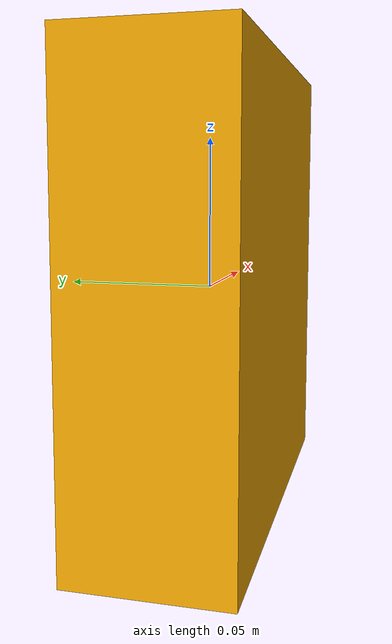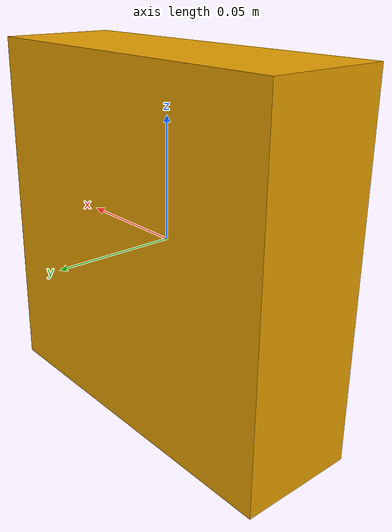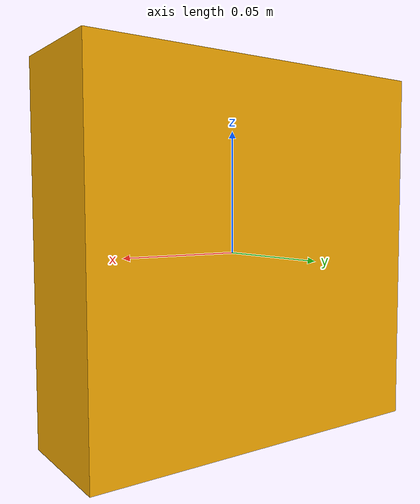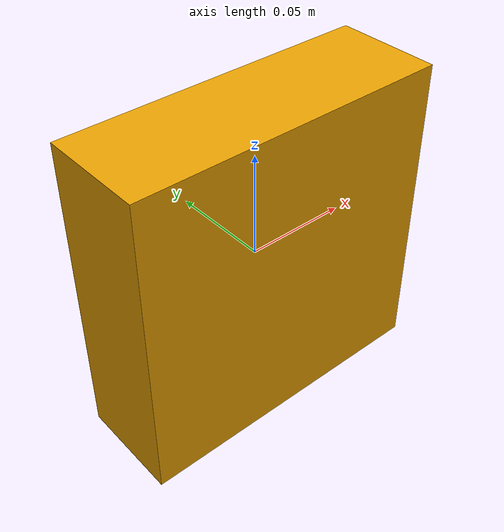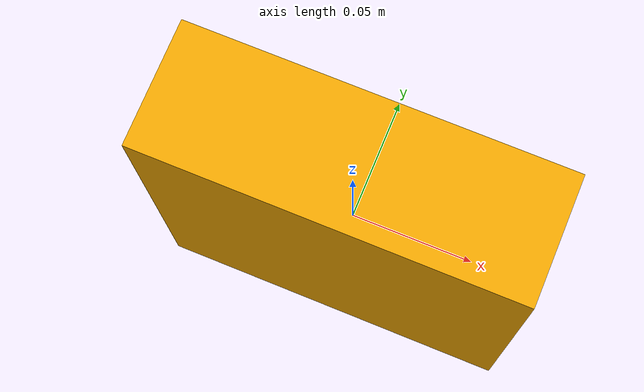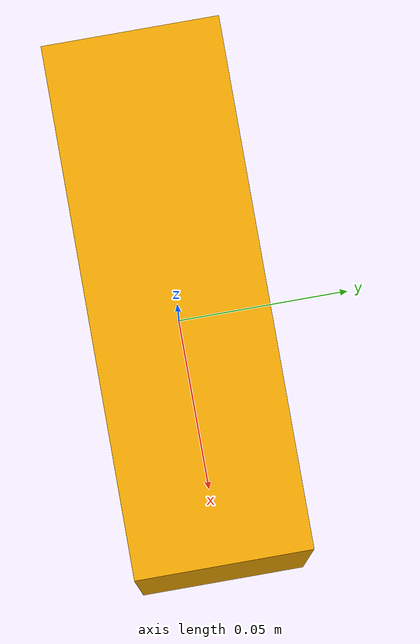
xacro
<?xml version="1.0"?>
<robot xmlns:xacro="http://www.ros.org/wiki/xacro" name="cube2">

	<link name="cube2">
		<inertial>
			<mass value="0.10"/>
			<inertia  ixx="${1/12*(0.05*0.05+0.15*0.15)}" ixy="0.00"  ixz="0.00" iyy="${1/12*(0.15*0.15+0.15*0.15)}" iyz="0.00" izz="${1/12*(0.05*0.05+0.15*0.15)}" />
		</inertial>
		<visual>
			<origin xyz="0 0 0" rpy="0 0 0"/>
			<geometry>
				<box size="0.15 0.05 0.15"/>
			</geometry>
		</visual>
		<collision>
			<origin xyz="0 0 0" rpy="0 0 0"/>
			<geometry>
				<box size="0.15 0.05 0.15"/>
			</geometry>
		</collision>
	</link>

</robot>
